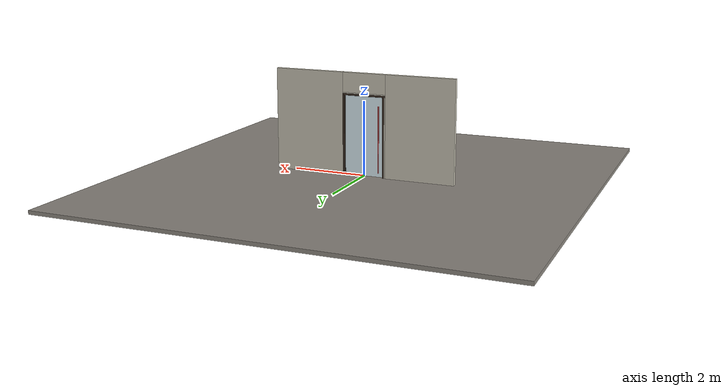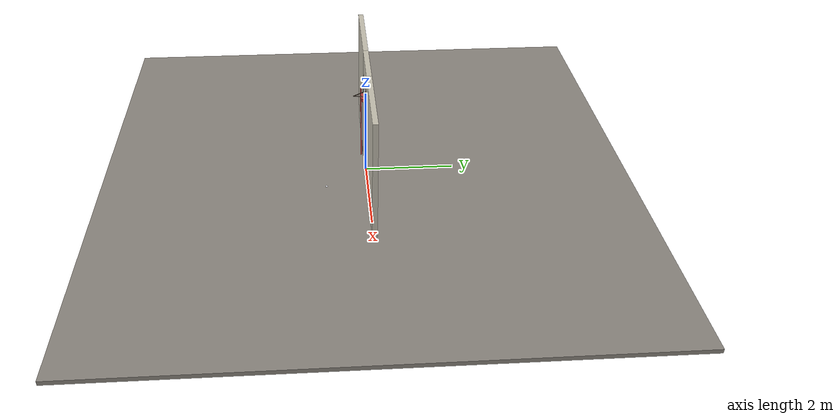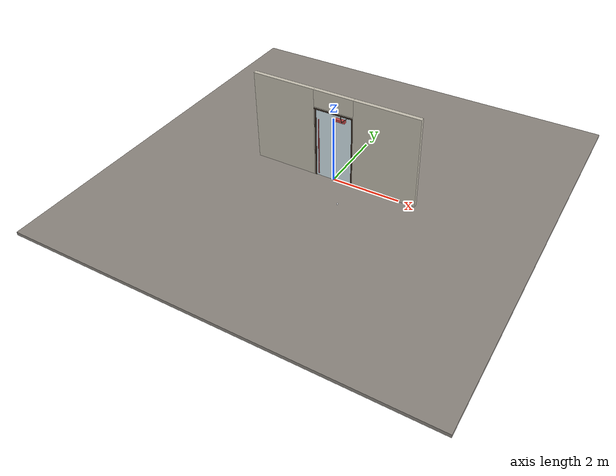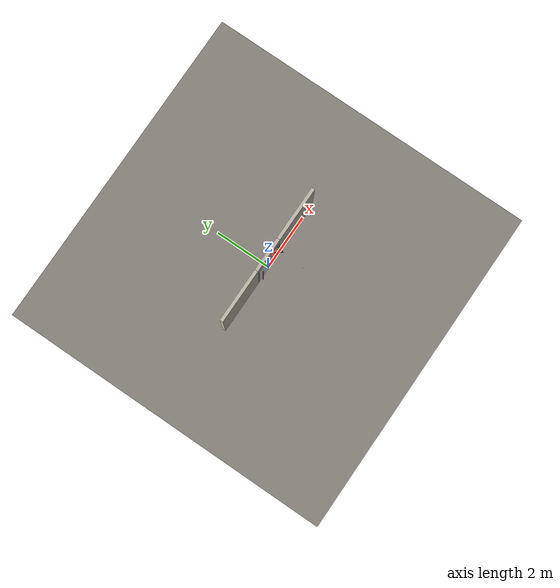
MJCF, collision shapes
<?xml version="1.0" ?>
<mujoco model="db0522_swing_single_full">
  <compiler angle="radian" meshdir="../../hardware" texturedir="../../textures" autolimits="true" inertiafromgeom="false"/>
  <option timestep="0.002" integrator="implicitfast" cone="elliptic" impratio="10" noslip_iterations="3">
    <flag multiccd="enable"/>
  </option>
  <size memory="16M"/>
  <default>
    <geom condim="4" solref="0.005 1" solimp="0.95 0.99 0.001"/>
    <joint solreflimit="0.005 1" solimplimit="0.95 0.99 0.001"/>
    <tendon solreflimit="0.005 1"/>
    <equality solref="0.002 1"/>
  </default>
  <visual>
    <headlight ambient="0.4 0.4 0.4" diffuse="0.7 0.7 0.7" specular="0.2 0.2 0.2"/>
    <quality shadowsize="4096"/>
    <map znear="0.01" zfar="60"/>
  </visual>
  <asset>
    <mesh name="closer_body_fdc4667657" file="closer_body_fdc4667657.obj"/>
    <mesh name="hinge_d8146feb18" file="hinge_d8146feb18.obj"/>
    <mesh name="hinge_jamb_c874a9790e" file="hinge_jamb_c874a9790e.obj"/>
    <mesh name="pull_897e207f65" file="pull_897e207f65.obj"/>
    <material name="mat_floor" rgba="0.55 0.53 0.5 1" specular="0.2" shininess="0.15" reflectance="0"/>
    <material name="mat_wall" rgba="0.78 0.76 0.7 1" specular="0.2" shininess="0.1" reflectance="0"/>
    <material name="mat_leaf" rgba="0.85 0.92 0.95 0.25" specular="0.2" shininess="0.95" reflectance="0.1"/>
    <material name="mat_glass_leaf" rgba="0.85 0.92 0.95 0.25" specular="0.2" shininess="0.95" reflectance="0.1"/>
    <material name="mat_patch" rgba="0.75 0.76 0.77 1" specular="0.8" shininess="0.65" reflectance="0.4"/>
    <material name="mat_hinge" rgba="0.65 0.66 0.68 1" specular="0.74" shininess="0.5" reflectance="0.36"/>
    <material name="mat_op_stainless" rgba="0.75 0.76 0.77 1" specular="0.8" shininess="0.65" reflectance="0.4"/>
    <material name="mat_frame" rgba="0.22 0.17 0.13 1" specular="0.8" shininess="0.6" reflectance="0.4"/>
    <material name="mat_closer" rgba="0.22 0.17 0.13 1" specular="0.8" shininess="0.6" reflectance="0.4"/>
    <material name="mat_stop" rgba="0.9 0.9 0.92 1" specular="0.8" shininess="0.9" reflectance="0.4"/>
    <texture name="skybox" type="skybox" builtin="gradient" rgb1="0.6 0.7 0.85" rgb2="0.9 0.92 0.95" width="256" height="256"/>
  </asset>
  <worldbody>
    <light name="sun" pos="1.5 -2.5 4" dir="-0.3 0.5 -0.8" directional="true" diffuse="0.8 0.8 0.8" specular="0.3 0.3 0.3" castshadow="true"/>
    <light name="fill" pos="-1.5 2.5 3" dir="0.3 -0.5 -0.7" directional="true" diffuse="0.35 0.35 0.4" castshadow="false"/>
    <camera name="robot_view" pos="0 -2.609812 1.812087" xyaxes="1 0 0 0 0.26963 0.962964" fovy="52"/>
    <camera name="far_view" pos="0 2.665812 1.812087" xyaxes="-1 0 0 0 -0.26963 0.962964" fovy="52"/>
    <camera name="iso" pos="-2.004737 -2.187762 2.234138" xyaxes="0.741536 -0.670913 0 0.242917 0.268487 0.932151" fovy="46"/>
    <camera name="detail_handle" pos="-0.248 -0.8875 1.296" xyaxes="0.97561 0.219512 0 -0.070934 0.315262 0.94635" fovy="38"/>
    <geom name="floor" type="box" size="6 6 0.05" pos="0 0 -0.05" material="mat_floor" group="0" contype="1" conaffinity="1" friction="0.8 0.005 0.0001" density="2400"/>
    <geom name="wall_left" type="box" size="0.944 0.0575 1.3735" pos="-1.556 0.028 1.3735" material="mat_wall" group="0" contype="1" conaffinity="1" friction="0.6 0.005 0.0001" density="800"/>
    <geom name="wall_right" type="box" size="0.959 0.0575 1.3735" pos="1.541 0.028 1.3735" material="mat_wall" group="0" contype="1" conaffinity="1" friction="0.6 0.005 0.0001" density="800"/>
    <geom name="wall_header" type="box" size="0.597 0.0575 0.2625" pos="-0.015 0.028 2.4845" material="mat_wall" group="0" contype="1" conaffinity="1" friction="0.6 0.005 0.0001" density="800"/>
    <geom name="hinge_0_jamb" type="mesh" mesh="hinge_jamb_c874a9790e" pos="0.534 -0.0295 0.259" quat="0 0 1 0" material="mat_hinge" group="1" contype="0" conaffinity="0" density="7850"/>
    <geom name="hinge_1_jamb" type="mesh" mesh="hinge_jamb_c874a9790e" pos="0.534 -0.0295 1.076" quat="0 0 1 0" material="mat_hinge" group="1" contype="0" conaffinity="0" density="7850"/>
    <geom name="hinge_2_jamb" type="mesh" mesh="hinge_jamb_c874a9790e" pos="0.534 -0.0295 1.963" quat="0 0 1 0" material="mat_hinge" group="1" contype="0" conaffinity="0" density="7850"/>
    <geom name="jamb_hinge" type="box" size="0.0225 0.0575 1.0735" pos="0.5595 0.028 1.0735" material="mat_frame" group="0" contype="1" conaffinity="1" friction="0.6 0.005 0.0001" density="300"/>
    <geom name="jamb_strike" type="box" size="0.0225 0.0575 1.0735" pos="-0.5595 0.028 1.0735" material="mat_frame" group="0" contype="1" conaffinity="1" friction="0.6 0.005 0.0001" density="300"/>
    <geom name="stud_strike" type="box" size="0.015 0.0575 1.0735" pos="-0.597 0.028 1.0735" material="mat_wall" group="0" contype="1" conaffinity="1" friction="0.6 0.005 0.0001" density="500"/>
    <geom name="jamb_head" type="box" size="0.597 0.0575 0.0225" pos="-0.015 0.028 2.1695" material="mat_frame" group="0" contype="1" conaffinity="1" friction="0.6 0.005 0.0001" density="300"/>
    <geom name="head_stud" type="box" size="0.597 0.0575 0.015" pos="-0.015 0.028 2.207" material="mat_wall" group="0" contype="1" conaffinity="1" friction="0.6 0.005 0.0001" density="500"/>
    <geom name="stop_hinge" type="box" size="0.0055 0.016 1.0735" pos="0.5315 0.039 1.0735" material="mat_frame" group="0" contype="1" conaffinity="1" friction="0.6 0.005 0.0001" density="300"/>
    <geom name="stop_strike" type="box" size="0.0055 0.016 1.0735" pos="-0.5315 0.039 1.0735" material="mat_frame" group="0" contype="1" conaffinity="1" friction="0.6 0.005 0.0001" density="300"/>
    <geom name="stop_head" type="box" size="0.537 0.016 0.0055" pos="0 0.039 2.1415" material="mat_frame" group="0" contype="1" conaffinity="1" friction="0.6 0.005 0.0001" density="300"/>
    <geom name="closer_bracket" type="box" size="0.03 0.012 0.014" pos="0.437 -0.0415 2.177" material="mat_closer" group="1" contype="0" conaffinity="0" density="2700"/>
    <geom name="floor_stop_dome" type="sphere" size="0.025" pos="0.63297 -0.931256 0" material="mat_stop" group="0" contype="1" conaffinity="1" friction="0.6 0.005 0.0001" density="7000"/>
    <site name="approach_point" pos="0 -1.5 0" quat="1 0 0 0" size="0.05" rgba="0.2 0.9 0.2 0.5" group="4"/>
    <site name="goal_point" pos="0 1.5 0" quat="1 0 0 0" size="0.05" rgba="0.2 0.9 0.2 0.5" group="4"/>
    <site name="door_plane_center" pos="0 0 1.0735" quat="1 0 0 0" size="0.02" rgba="0.2 0.9 0.2 0.5" group="4"/>
    <body name="leaf" pos="0.537 0 0">
      <inertial pos="-0.572595 -0.008777 1.183668" mass="123.979625" quat="0.462782 0.479933 0.527166 -0.526871" diaginertia="12.729682361 52.871345478 65.165301177"/>
      <joint name="leaf_hinge" type="hinge" axis="0 0 1" pos="-0.003 -0.0295 0" limited="true" range="0 1.658063" damping="12.49954" frictionloss="0.699177" stiffness="51.540737" springref="-1.974943" armature="0.02"/>
      <geom name="leaf_glass" type="box" size="0.5335 0.0225 1.067" pos="-0.5365 0 1.076" material="mat_glass_leaf" group="0" contype="1" conaffinity="1" friction="0.4 0.005 0.0001" density="1"/>
      <geom name="hinge_0" type="mesh" mesh="hinge_d8146feb18" pos="-0.003 -0.0295 0.259" quat="0 0 1 0" material="mat_hinge" group="1" contype="0" conaffinity="0" density="7850"/>
      <geom name="hinge_1" type="mesh" mesh="hinge_d8146feb18" pos="-0.003 -0.0295 1.076" quat="0 0 1 0" material="mat_hinge" group="1" contype="0" conaffinity="0" density="7850"/>
      <geom name="hinge_2" type="mesh" mesh="hinge_d8146feb18" pos="-0.003 -0.0295 1.963" quat="0 0 1 0" material="mat_hinge" group="1" contype="0" conaffinity="0" density="7850"/>
      <geom name="leaf_pull_n" type="mesh" mesh="pull_897e207f65" pos="-0.965 -0.0225 1.016" quat="0 0 -0.707107 0.707107" material="mat_op_stainless" group="1" contype="0" conaffinity="0" density="3000"/>
      <geom name="leaf_pull_col_n" type="capsule" size="0.016 0.88" pos="-0.965 -0.0875 1.016" material="mat_op_stainless" group="3" contype="1" conaffinity="1" rgba="0.8 0.3 0.3 0.25" friction="0.7 0.01 0.0001" density="3000"/>
      <geom name="leaf_pull_p" type="mesh" mesh="pull_897e207f65" pos="-0.965 0.0225 1.016" quat="0 0 0.707107 0.707107" material="mat_op_stainless" group="1" contype="0" conaffinity="0" density="3000"/>
      <geom name="leaf_pull_col_p" type="capsule" size="0.016 0.88" pos="-0.965 0.0875 1.016" material="mat_op_stainless" group="3" contype="1" conaffinity="1" rgba="0.8 0.3 0.3 0.25" friction="0.7 0.01 0.0001" density="3000"/>
      <geom name="closer_body" type="mesh" mesh="closer_body_fdc4667657" pos="-0.3 -0.0225 2.054" quat="0 0 -0.707107 0.707107" material="mat_closer" group="1" contype="0" conaffinity="0" density="2000"/>
      <geom name="closer_body_col" type="box" size="0.145 0.05 0.035" pos="-0.3 -0.0725 2.054" material="mat_closer" group="3" contype="1" conaffinity="1" rgba="0.8 0.3 0.3 0.25" friction="0.6 0.005 0.0001" density="2000"/>
      <geom name="closer_pinion_shaft" type="cylinder" size="0.008 0.0615" pos="-0.3 -0.0725 2.1155" material="mat_closer" group="1" contype="0" conaffinity="0" density="2700"/>
      <site name="leaf_pull_grip_n" pos="-0.965 -0.0875 1.016" quat="1 0 0 0" size="0.012" rgba="0.2 0.9 0.2 0.5" group="4"/>
      <site name="leaf_pull_grip_p" pos="-0.965 0.0875 1.016" quat="1 0 0 0" size="0.012" rgba="0.2 0.9 0.2 0.5" group="4"/>
      <site name="leaf_edge_mid" pos="-1.07 0 1.067" quat="1 0 0 0" size="0.02" rgba="0.2 0.9 0.2 0.5" group="4"/>
      <body name="closer_arm_main" pos="-0.3 -0.0725 2.177" quat="0.890947 0 0 -0.454107">
        <inertial pos="0.14 0 0" mass="0.12096" quat="1 0 0 0" diaginertia="0.000003588 0.00079128 0.000792852"/>
        <joint name="closer_pinion" type="hinge" axis="0 0 1" limited="false" damping="0.01" armature="0.002"/>
        <geom name="closer_arm_main_geom" type="box" size="0.14 0.008 0.005" pos="0.14 0 0" material="mat_closer" group="1" contype="0" conaffinity="0" density="2700"/>
        <body name="closer_arm_fore" pos="0.28 0 0" quat="0.373215 0 0 0.927745">
          <inertial pos="0.128088 0 0" mass="0.076531" quat="1 0 0 0" diaginertia="0.000001771 0.000437665 0.000438201"/>
          <joint name="closer_elbow" type="hinge" axis="0 0 1" limited="false" damping="0.01" armature="0.002"/>
          <geom name="closer_arm_fore_geom" type="box" size="0.1125 0.007 0.004" pos="0.1125 0 0" material="mat_closer" group="1" contype="0" conaffinity="0" density="2700"/>
          <geom name="closer_fore_neck" type="box" size="0.0175 0.003 0.003" pos="0.2425 0 0" material="mat_closer" group="1" contype="0" conaffinity="0" density="2700"/>
          <geom name="closer_fore_pivot" type="cylinder" size="0.005 0.012" pos="0.26 0 0" material="mat_closer" group="1" contype="0" conaffinity="0" density="2700"/>
        </body>
      </body>
    </body>
  </worldbody>
  <equality>
    <connect name="closer_arm_connect" body1="closer_arm_fore" body2="world" anchor="0.26 0 0" active="true"/>
  </equality>
  <contact>
    <exclude body1="closer_arm_main" body2="leaf"/>
    <exclude body1="closer_arm_fore" body2="leaf"/>
    <exclude body1="closer_arm_main" body2="closer_arm_fore"/>
  </contact>
  <sensor>
    <jointpos name="leaf_hinge_pos" joint="leaf_hinge"/>
    <jointvel name="leaf_hinge_vel" joint="leaf_hinge"/>
  </sensor>
</mujoco>
